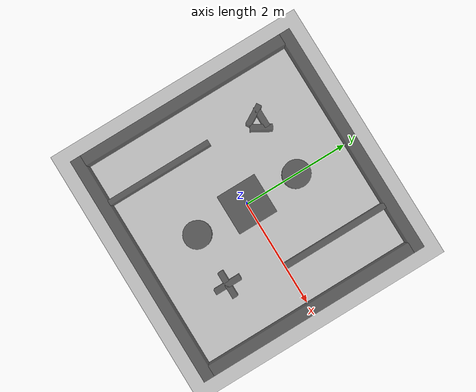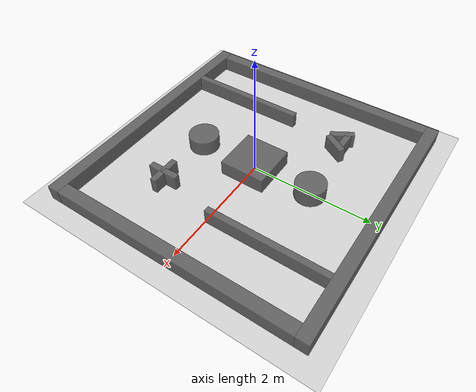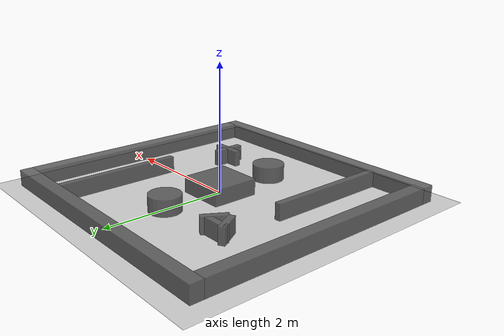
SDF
<!-- Two large Ls-->
<?xml version="1.0" ?>
<sdf version="1.6">
  <world name="minimal_world">
    <include>
      <uri>model://ground_plane</uri>
    </include>
    <include>
      <uri>model://sun</uri>
    </include>

   <!-- Back Wall -->
   <model name="back_wall">
    <static>true</static>
     <pose>0 2.1 0 0 0 0</pose>
     <link name="back_wall">
       <collision name="collision">
         <geometry>
           <box>
             <size>4.4 0.2 0.5</size>
           </box>
         </geometry>
       </collision>
       <visual name="visual">
         <geometry>
           <box>
             <size>4.4 0.2 0.5</size>
           </box>
         </geometry>
         <material>
           <ambient>0.3 0.3 0.3 0.5</ambient>
           <diffuse>0.3 0.3 0.3 0.8</diffuse>
         </material>
       </visual>
     </link>
   </model>

   <!-- Front Wall -->
   <model name="front_wall">
   <static>true</static>
     <pose>0 -2.1 0 0 0 0</pose>
     <link name="front_wall">
       <collision name="collision">
         <geometry>
           <box>
             <size>4.4 0.2 0.5</size>
           </box>
         </geometry>
       </collision>
       <visual name="visual">
         <geometry>
           <box>
             <size>4.4 0.2 0.5</size>
           </box>
         </geometry>
         <material>
           <ambient>0.3 0.3 0.3 0.5</ambient>
           <diffuse>0.3 0.3 0.3 0.8</diffuse>
         </material>
       </visual>
     </link>
   </model>

   <!-- Left Wall -->
   <model name="left_wall">
   <static>true</static>
     <pose>-2.1 0 0 0 0 0</pose>
     <link name="left_wall">
       <collision name="collision">
         <geometry>
           <box>
             <size>0.2 4 0.5</size>
           </box>
         </geometry>
       </collision>
       <visual name="visual">
         <geometry>
           <box>
             <size>0.2 4 0.5</size>
           </box>
         </geometry>
         <material>
           <ambient>0.3 0.3 0.3 0.5</ambient>
           <diffuse>0.3 0.3 0.3 0.8</diffuse>
         </material>
       </visual>
     </link>
   </model>

   <!-- Right Wall -->
   <model name="right_wall">
   <static>true</static>
     <pose>2.1 0 0 0 0 0</pose>
     <link name="right_wall">
       <collision name="collision">
         <geometry>
           <box>
             <size>0.2 4 0.5</size>
           </box>
         </geometry>
       </collision>
       <visual name="visual">
         <geometry>
           <box>
             <size>0.2 4 0.5</size>
           </box>
         </geometry>
         <material>
           <ambient>0.3 0.3 0.3 0.5</ambient>
           <diffuse>0.3 0.3 0.3 0.8</diffuse>
         </material>
       </visual>
     </link>
   </model>

   <!-- Obstacles -->

    <!-- Center Block -->
   <model name="center_block">
   <static>true</static>
     <pose>0 0 0 0 0 0</pose>
     <link name="center_block">
       <collision name="collision">
         <geometry>
           <box>
             <size> 0.75 0.75 0.5</size>
           </box>
         </geometry>
       </collision>
       <visual name="visual">
         <geometry>
           <box>
             <size>0.75 0.75 0.5</size>
           </box>
         </geometry>
         <material>
           <ambient>0.3 0.3 0.3 0.5</ambient>
           <diffuse>0.3 0.3 0.3 0.8</diffuse>
         </material>
       </visual>
     </link>
   </model>

   <!-- Bottom Cylinder-->
   <model name="bottom_cylinder">
   <static>true</static>
     <pose>0 -1 0 0 0 0</pose>
     <link name="bottom_cylinder">
       <collision name="collision">
         <geometry>
            <cylinder>
                <radius>0.25</radius>
                <length>0.5</length>
            </cylinder>
         </geometry>
       </collision>
       <visual name="visual">
         <geometry>
           <cylinder>
                <radius>0.25</radius>
                <length>0.5</length>
            </cylinder>
         </geometry>
         <material>
           <ambient>0.3 0.3 0.3 0.5</ambient>
           <diffuse>0.3 0.3 0.3 0.8</diffuse>
         </material>
       </visual>
     </link>
   </model>

   <!-- Top Cylinder-->
   <model name="top_cylinder">
   <static>true</static>
     <pose>0 1 0 0 0 0</pose>
     <link name="top_cylinder">
       <collision name="collision">
         <geometry>
            <cylinder>
                <radius>0.25</radius>
                <length>0.5</length>
            </cylinder>
         </geometry>
       </collision>
       <visual name="visual">
         <geometry>
           <cylinder>
                <radius>0.25</radius>
                <length>0.5</length>
            </cylinder>
         </geometry>
         <material>
           <ambient>0.3 0.3 0.3 0.5</ambient>
           <diffuse>0.3 0.3 0.3 0.8</diffuse>
         </material>
       </visual>
     </link>
   </model>

   <!-- Bottom Left Divider-->
   <model name="bottom_left_divider">
   <static>true</static>
     <pose>-1.25 -1 0 0 0 0</pose>
     <link name="bottom_left_divider">
       <collision name="collision">
         <geometry>
           <box>
             <size>0.1 2 0.5</size>
           </box>
         </geometry>
       </collision>
       <visual name="visual">
         <geometry>
           <box>
             <size>0.1 2 0.5</size>
           </box>
         </geometry>
         <material>
           <ambient>0.3 0.3 0.3 0.5</ambient>
           <diffuse>0.3 0.3 0.3 0.8</diffuse>
         </material>
       </visual>
     </link>
   </model>

    <!-- Top Right Divider-->
   <model name="top_right_divider">
   <static>true</static>
     <pose>1.25 1 0 0 0 0</pose>
     <link name="top_right_divider">
       <collision name="collision">
         <geometry>
           <box>
             <size>0.1 2 0.5</size>
           </box>
         </geometry>
       </collision>
       <visual name="visual">
         <geometry>
           <box>
             <size>0.1 2 0.5</size>
           </box>
         </geometry>
         <material>
           <ambient>0.3 0.3 0.3 0.5</ambient>
           <diffuse>0.3 0.3 0.3 0.8</diffuse>
         </material>
       </visual>
     </link>
   </model>

    <!-- Left Triangle -->

    <model name="triangle_walls">
    <static>true</static>

    <!-- Wall 1 -->
        <link name="wall_1">
            <pose>-1.15 1.0 0 0 0 0</pose> <!-- Center the wall -->
            <collision name="collision">
                <geometry>
                    <box>
                        <size>0.4 0.1 0.5</size>
                    </box>
                </geometry>
            </collision>
            <visual name="visual">
                <geometry>
                    <box>
                        <size>0.4 0.1 0.5</size>
                    </box>
                </geometry>
                <material>
                    <ambient>0.3 0.3 0.3 0.5</ambient>
                    <diffuse>0.3 0.3 0.3 0.8</diffuse>
                </material>
            </visual>
        </link>

        <!-- Wall 2 -->
        <link name="wall_2">
            <pose>-1 0.9 0 0 0 1.0472</pose> <!-- Adjusted angle to 60 degrees -->
            <collision name="collision">
                <geometry>
                    <box>
                        <size>0.4 0.1 0.5</size>
                    </box>
                </geometry>
            </collision>
            <visual name="visual">
                <geometry>
                    <box>
                        <size>0.4 0.1 0.5</size>
                    </box>
                </geometry>
                <material>
                    <ambient>0.3 0.3 0.3 0.5</ambient>
                    <diffuse>0.3 0.3 0.3 0.8</diffuse>
                </material>
            </visual>
        </link>

        <!-- Wall 3 -->
        <link name="wall_3">
            <pose>-1.25 0.9 0 0 0 -1.0472</pose> <!-- Adjusted angle to -60 degrees -->
            <collision name="collision">
                <geometry>
                    <box>
                        <size>0.4 0.1 0.5</size>
                    </box>
                </geometry>
            </collision>
            <visual name="visual">
                <geometry>
                    <box>
                        <size>0.4 0.1 0.5</size>
                    </box>
                </geometry>
                <material>
                    <ambient>0.3 0.3 0.3 0.5</ambient>
                    <diffuse>0.3 0.3 0.3 0.8</diffuse>
                </material>
            </visual>
        </link>
    </model>

    <!-- Right Plus Sign -->
    <!-- Plus Sign Shape -->
    <model name="plus_sign_shape">
    <static>true</static>

        <!-- Horizontal Wall -->
        <link name="horizontal_wall">
            <pose>1 -1 0 0 0 0</pose> <!-- Center of the model -->
            <collision name="collision">
                <geometry>
                    <box>
                        <size>0.5 0.1 0.5</size> <!-- Horizontal rectangle -->
                    </box>
                </geometry>
            </collision>
            <visual name="visual">
                <geometry>
                    <box>
                        <size>0.5 0.1 0.5</size>
                    </box>
                </geometry>
                <material>
                    <ambient>0.3 0.3 0.3 0.5</ambient>
                    <diffuse>0.3 0.3 0.3 0.8</diffuse>
                </material>
            </visual>
        </link>

        <!-- Vertical Wall -->
        <link name="vertical_wall">
            <pose>1 -1 0 0 0 1.57</pose> <!-- Center of the model, rotated 90 degrees -->
            <collision name="collision">
                <geometry>
                    <box>
                        <size>0.5 0.1 0.5</size> <!-- Vertical rectangle -->
                    </box>
                </geometry>
            </collision>
            <visual name="visual">
                <geometry>
                    <box>
                        <size>0.5 0.1 0.5</size>
                    </box>
                </geometry>
                <material>
                    <ambient>0.3 0.3 0.3 0.5</ambient>
                    <diffuse>0.3 0.3 0.3 0.8</diffuse>
                </material>
            </visual>
        </link>
    </model>

   <!-- Configure the camera -->
    <gui fullscreen='0'>
      <camera name='user_camera'>
        <pose>0.0 -4.225 6 0 1 1.57</pose>
        <view_controller>orbit</view_controller>
        <projection_type>perspective</projection_type>
      </camera>
    </gui>
  </world>
</sdf>
